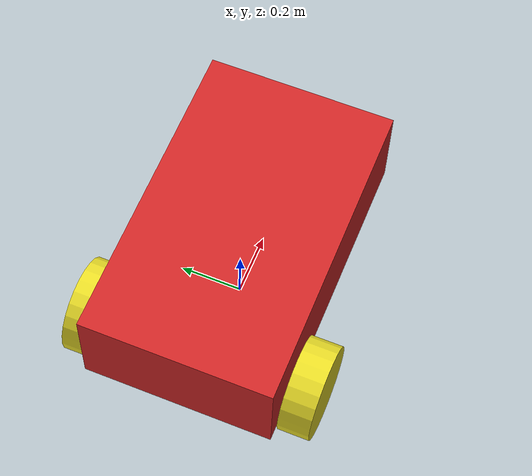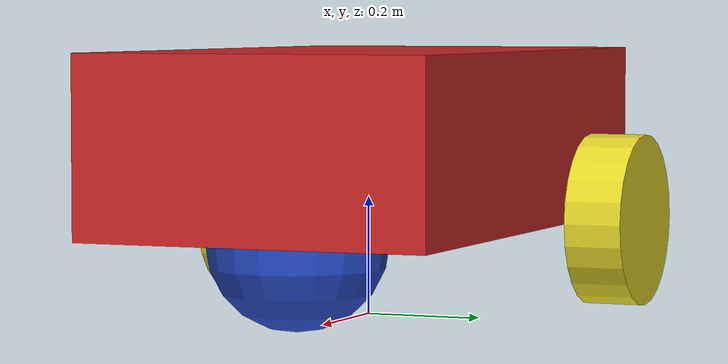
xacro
<?xml version="1.0"?>

<robot name="differential_drive_robot"
       xmlns:xacro="http://www.ros.org/wiki/xacro">

    <xacro:property name="pi_const" value="3.14159265"/>

    <!-- Body dimensions -->
    <xacro:property name="a" value="1" />
    <xacro:property name="b" value="0.3" />
    <xacro:property name="c" value="0.6"/>

    <!-- Wheel and caster dimensions -->
    <!-- Wheel and caster radius -->
    <xacro:property name="r" value="0.15"/>

    <!-- Wheel width -->
    <xacro:property name="d" value="0.1"/>

    <xacro:property name="s1" value="${b/2+r}"/>
    <xacro:property name="s2" value="${2*r}"/>
    <xacro:property name="s3" value="${2*r}"/>
    <xacro:property name="s4" value="${c/2+d/2}"/>

    <!--                         Mass and inertia                        -->

    <!-- Material density -->

    <!-- Body material density -->
    <xacro:property name="d1" value="2710.0"/>

    <!-- Wheel material density -->
    <xacro:property name="d2" value="2710.0"/>

    <!-- Caster material density -->
    <xacro:property name="d3" value="2710.0"/>

    <!-- Robot body mass, wheel mass, caster mass -->

    <!-- body -->
    <xacro:property name="m1" value="${d1*a*b*c}"/>

    <!-- wheel -->
    <xacro:property name="m2"
                    value="${d2*pi_const*r*r*d}"/>

    <!-- caster -->
    <xacro:property name="m3"
                    value="${d3*(4.0/3.0)*pi_const*r*r*r}"/>

    <!-- Moments of inertia of the robot body -->

    <xacro:property name="Ix_body"
                    value="${(1/12)*m1*(b*b+c*c) }"/>

    <xacro:property name="Iy_body"
                    value="${(1/12)*m1*(a*a+b*b) }"/>

    <xacro:property name="Iz_body"
                    value="${(1/12)*m1*(a*a+c*c) }"/>

    <!-- Moments of inertia of the wheel -->

    <xacro:property name="Iz_wheel"
                    value="${0.5*m2*r*r}" />

    <xacro:property name="I_wheel"
                    value="${(1.0/12.0)*m2*(3.0*r*r+d*d)}" />

    <!-- Moments of inertia of the caster sphere -->

    <xacro:property name="I_caster"
                    value="${(2.0/5.0)*m3*r*r}"/>

    <xacro:macro name="inertia_body">

        <inertial>

            <!-- Displacement and orientation of the center of the mass
                 frame of the link with respect to the link frame -->

            <origin rpy="0 0 0" xyz="0 0 ${s1}"/>

            <mass value="${m1}"/>

            <inertia
                ixx="${Ix_body}"
                ixy="0.0"
                ixz="0.0"
                iyy="${Iy_body}"
                iyz="0"
                izz="${Iz_body}" />

        </inertial>

    </xacro:macro>

    <!-- This macro defines the complete inertial section of the wheel -->

    <xacro:macro name="inertia_wheel">

        <inertial>

            <origin rpy="1.570795 0 0" xyz="0 0 0"/>

            <mass value="${m2}"/>

            <inertia
                ixx="${I_wheel}"
                ixy="0.0"
                ixz="0.0"
                iyy="${I_wheel}"
                iyz="0"
                izz="${Iz_wheel}" />

        </inertial>

    </xacro:macro>

    <!-- This macro defines the complete inertial section of the caster -->

    <xacro:macro name="inertia_caster">

        <inertial>

            <origin rpy="0 0 0" xyz="0 0 0"/>

            <mass value="${m3}"/>

            <inertia
                ixx="${I_caster}"
                ixy="0.0"
                ixz="0.0"
                iyy="${I_caster}"
                iyz="0"
                izz="${I_caster}" />

        </inertial>

    </xacro:macro>

    <!--                         Include additional files               -->

    <!-- Over here we include the file that defines extra Gazebo
         options and motion control driver -->

    <xacro:include filename="$(find mobile_robot)/model/robot.gazebo" />

    <!--                     FROM HERE WE DEFINE LINKS, JOINTS          -->

    <!--                  START: Fictitious link of the robot           -->

    <!-- We need to have this link otherwise Gazebo will complain -->

    <link name="base_footprint"> </link>

    <joint name="body_link_joint" type="fixed">

        <parent link="base_footprint"/>

        <child link="body_link"/>

    </joint>

    <!--                    END: Fictitious link of the robot            -->

    <!--                     START: Body link of the robot               -->

    <link name="body_link">

        <visual>

            <geometry>

                <box size="${a} ${c} ${b}" />

            </geometry>

            <!-- Displacement and orientation of the geometric center
                 of the link with respect to the link frame -->

            <origin rpy="0 0 0" xyz="0 0 ${s1}"/>

        </visual>

        <collision>

            <geometry>

                <box size="${a} ${c} ${b}" />

            </geometry>

            <origin rpy="0 0 0" xyz="0 0 ${s1}"/>

        </collision>

        <xacro:inertia_body />

    </link>

    <!--                     END: Body link of the robot                -->

    <!--                    START: Wheel 1 of the robot                 -->

    <joint name="wheel1_joint" type="continuous">

        <parent link="body_link"/>

        <child link="wheel1_link" />

        <origin xyz="${-s2} ${-s4} ${r}" rpy="0 0 0" />

        <axis xyz="0 1 0"/>

        <limit effort="50000" velocity="10"/>

        <dynamics damping="1.0" friction="1.0"/>

    </joint>

    <link name="wheel1_link">

        <visual>

            <origin rpy="1.570795 0 0" xyz="0 0 0"/>

            <geometry>

                <cylinder length="${d}" radius="${r}"/>

            </geometry>

        </visual>

        <collision>

            <origin rpy="1.570795 0 0" xyz="0 0 0"/>

            <geometry>

                <cylinder length="${d}" radius="${r}"/>

            </geometry>

        </collision>

        <xacro:inertia_wheel />

    </link>

    <!--                    END: Wheel 1 of the robot                   -->

    <!--                    START: Wheel 2 of the robot                 -->

    <joint name="wheel2_joint" type="continuous">

        <parent link="body_link"/>

        <child link="wheel2_link" />

        <origin xyz="${-s2} ${s4} ${r}" rpy="0 0 0" />

        <axis xyz="0 1 0"/>

        <limit effort="50000" velocity="10"/>

        <dynamics damping="1.0" friction="1.0"/>

    </joint>

    <link name="wheel2_link">

        <visual>

            <origin rpy="1.570795 0 0" xyz="0 0 0"/>

            <geometry>

                <cylinder length="${d}" radius="${r}"/>

            </geometry>

        </visual>

        <collision>

            <origin rpy="1.570795 0 0" xyz="0 0 0"/>

            <geometry>

                <cylinder length="${d}" radius="${r}"/>

            </geometry>

        </collision>

        <xacro:inertia_wheel />

    </link>

    <!--                    END: Wheel 2 of the robot                   -->

    <!--                     START: Caster of the robot                 -->

    <joint name="caster_joint" type="fixed">

        <parent link="body_link"/>

        <child link="caster_link"/>

        <origin xyz="${s3} 0 ${r}" rpy="0 0 0"/>

    </joint>

    <link name="caster_link">

        <visual>

            <origin rpy="0 0 0" xyz="0 0 0"/>

            <geometry>

                <sphere radius="${r}"/>

            </geometry>

        </visual>

        <collision>

            <origin rpy="0 0 0" xyz="0 0 0"/>

            <geometry>

                <sphere radius="${r}"/>

            </geometry>

        </collision>

        <xacro:inertia_caster />

    </link>

    <!--                     END: Caster of the robot                   -->

</robot>
